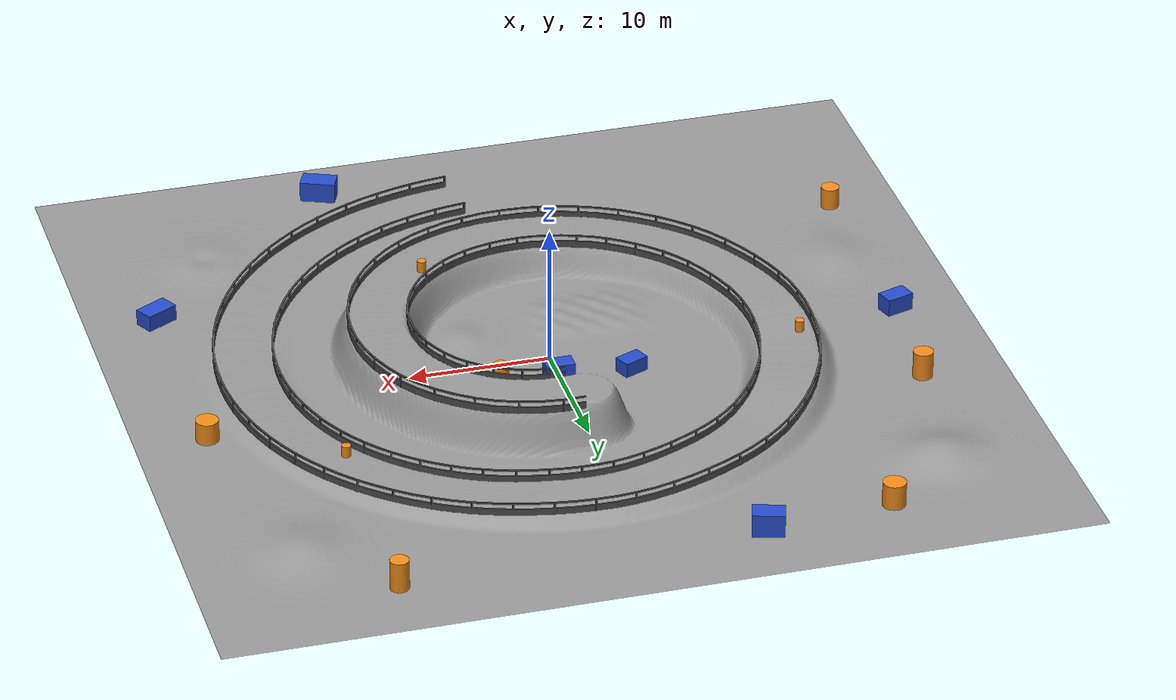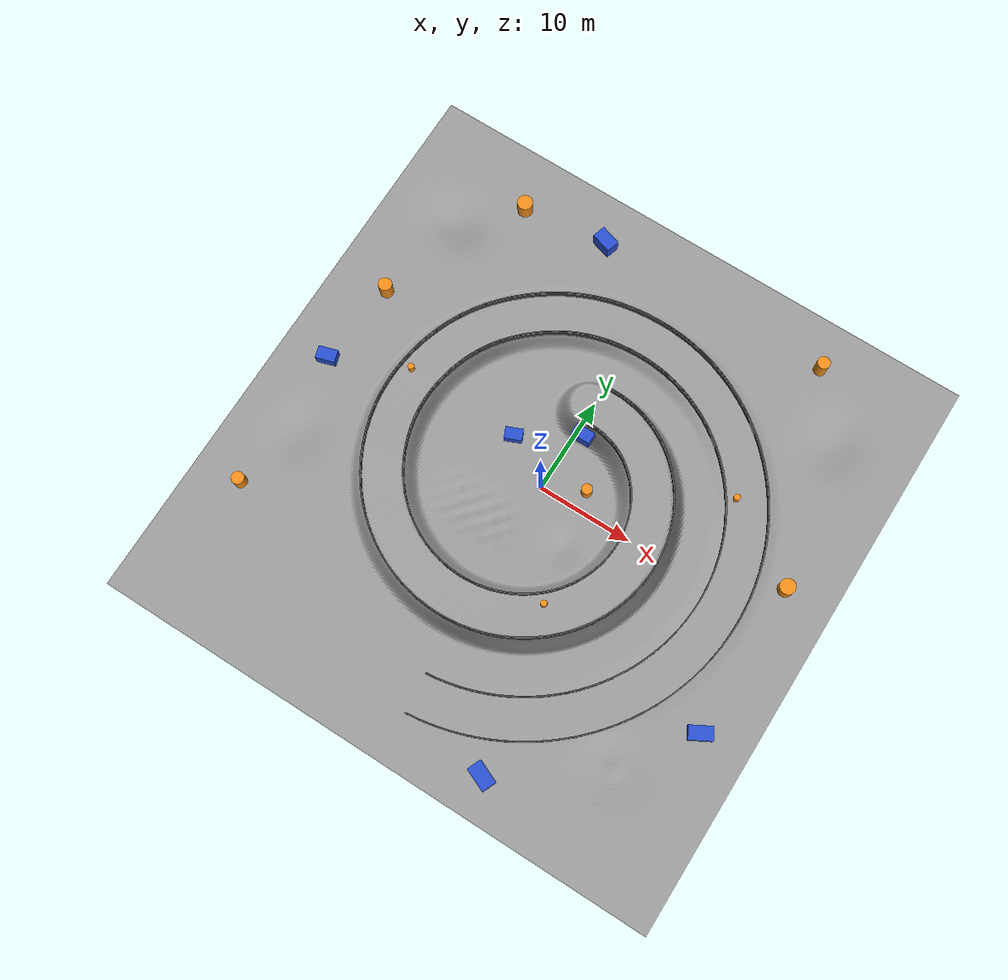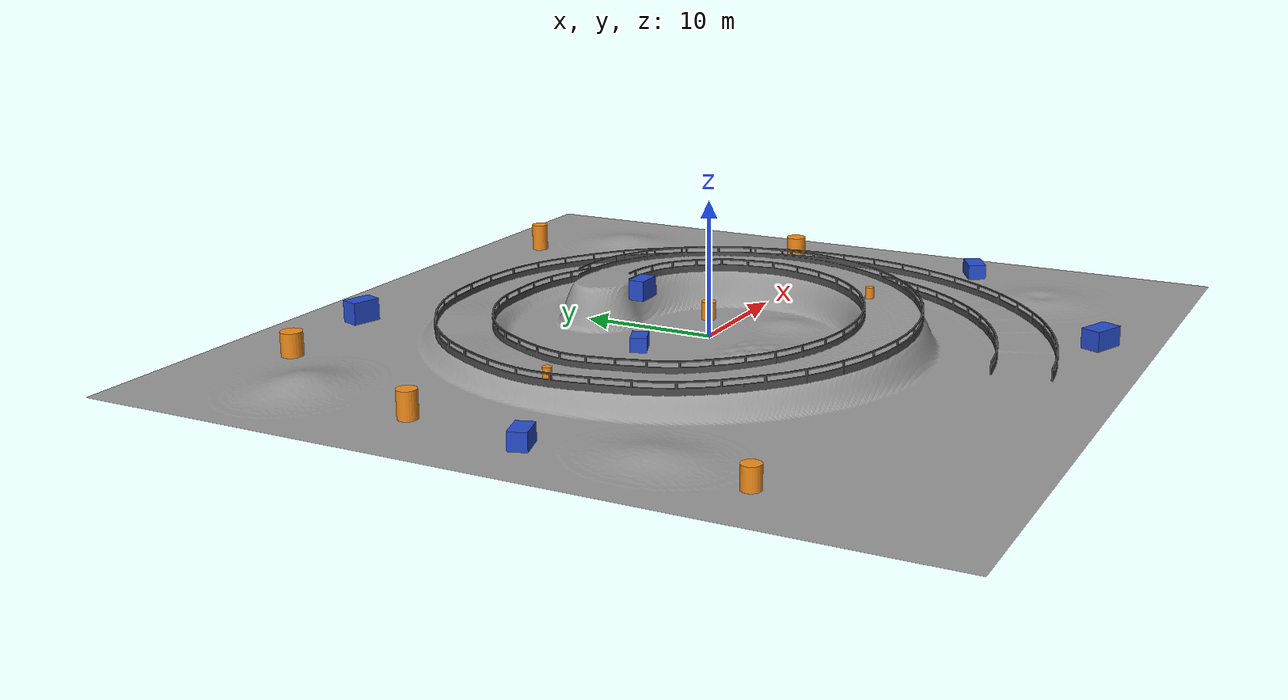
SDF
<?xml version="1.0"?>
<sdf version="1.7">
  <world name="rough_terrain">
    <gravity>0 0 -9.81</gravity>
    <physics name="ode" type="ode">
      <max_step_size>0.001</max_step_size><real_time_update_rate>1000</real_time_update_rate>
    </physics>
    <scene><shadows>true</shadows><ambient>0.4 0.4 0.4 1</ambient><background>0.7 0.7 0.7 1</background></scene>
    <light name="sun" type="directional">
      <pose>0 0 10 0 0 0</pose><diffuse>0.8 0.8 0.8 1</diffuse>
      <specular>0.05 0.05 0.05 1</specular><direction>-0.5 0.1 -0.9</direction>
      <cast_shadows>true</cast_shadows>
    </light>
    <model name="rough_terrain">
      <static>true</static><link name="terrain">
        <collision name="collision"><geometry><mesh><uri>file://worlds/rough_terrain_mesh.stl</uri></mesh></geometry>
          <surface><friction><ode><mu>1.0</mu><mu2>1.0</mu2></ode></friction></surface>
        </collision>
        <visual name="visual"><cast_shadows>false</cast_shadows><geometry><mesh><uri>file://worlds/rough_terrain_mesh.stl</uri></mesh></geometry>
          <material><lighting>true</lighting><script>
            <uri>file://media/materials/scripts/gazebo.material</uri>
            <name>Gazebo/Grey</name></script></material>
        </visual>
      </link>
    </model>
    <model name="cylinder_00">
      <static>true</static><pose>-25 -15 0.77 0 0 0</pose>
      <link name="body">
        <collision name="collision"><geometry><cylinder><radius>0.65</radius><length>1.6</length></cylinder></geometry></collision>
        <visual name="visual"><cast_shadows>true</cast_shadows><geometry><cylinder><radius>0.65</radius><length>1.6</length></cylinder></geometry>
          <material><lighting>true</lighting><script>
            <uri>file://media/materials/scripts/gazebo.material</uri>
            <name>Gazebo/Orange</name></script></material>
        </visual>
      </link>
    </model><model name="cylinder_01">
      <static>true</static><pose>-24 9 0.97 0 0 0</pose>
      <link name="body">
        <collision name="collision"><geometry><cylinder><radius>0.7</radius><length>2.0</length></cylinder></geometry></collision>
        <visual name="visual"><cast_shadows>true</cast_shadows><geometry><cylinder><radius>0.7</radius><length>2.0</length></cylinder></geometry>
          <material><lighting>true</lighting><script>
            <uri>file://media/materials/scripts/gazebo.material</uri>
            <name>Gazebo/Orange</name></script></material>
        </visual>
      </link>
    </model><model name="cylinder_02">
      <static>true</static><pose>-17 24 0.87 0 0 0</pose>
      <link name="body">
        <collision name="collision"><geometry><cylinder><radius>0.8</radius><length>1.8</length></cylinder></geometry></collision>
        <visual name="visual"><cast_shadows>true</cast_shadows><geometry><cylinder><radius>0.8</radius><length>1.8</length></cylinder></geometry>
          <material><lighting>true</lighting><script>
            <uri>file://media/materials/scripts/gazebo.material</uri>
            <name>Gazebo/Orange</name></script></material>
        </visual>
      </link>
    </model><model name="cylinder_03">
      <static>true</static><pose>17 25 1.07 0 0 0</pose>
      <link name="body">
        <collision name="collision"><geometry><cylinder><radius>0.65</radius><length>2.2</length></cylinder></geometry></collision>
        <visual name="visual"><cast_shadows>true</cast_shadows><geometry><cylinder><radius>0.65</radius><length>2.2</length></cylinder></geometry>
          <material><lighting>true</lighting><script>
            <uri>file://media/materials/scripts/gazebo.material</uri>
            <name>Gazebo/Orange</name></script></material>
        </visual>
      </link>
    </model><model name="cylinder_04">
      <static>true</static><pose>25 4 0.77 0 0 0</pose>
      <link name="body">
        <collision name="collision"><geometry><cylinder><radius>0.8</radius><length>1.6</length></cylinder></geometry></collision>
        <visual name="visual"><cast_shadows>true</cast_shadows><geometry><cylinder><radius>0.8</radius><length>1.6</length></cylinder></geometry>
          <material><lighting>true</lighting><script>
            <uri>file://media/materials/scripts/gazebo.material</uri>
            <name>Gazebo/Orange</name></script></material>
        </visual>
      </link>
    </model><model name="cylinder_05">
      <static>true</static><pose>4 2 0.6699999999999999 0 0 0</pose>
      <link name="body">
        <collision name="collision"><geometry><cylinder><radius>0.55</radius><length>1.4</length></cylinder></geometry></collision>
        <visual name="visual"><cast_shadows>true</cast_shadows><geometry><cylinder><radius>0.55</radius><length>1.4</length></cylinder></geometry>
          <material><lighting>true</lighting><script>
            <uri>file://media/materials/scripts/gazebo.material</uri>
            <name>Gazebo/Orange</name></script></material>
        </visual>
      </link>
    </model><model name="box_06">
      <static>true</static><pose>-25 0 0.62 0 0 0.3</pose>
      <link name="body">
        <collision name="collision"><geometry><box><size>2.0 1.3 1.3</size></box></geometry></collision>
        <visual name="visual"><cast_shadows>true</cast_shadows><geometry><box><size>2.0 1.3 1.3</size></box></geometry>
          <material><lighting>true</lighting><script>
            <uri>file://media/materials/scripts/gazebo.material</uri>
            <name>Gazebo/Blue</name></script></material>
        </visual>
      </link>
    </model><model name="box_07">
      <static>true</static><pose>-8 25 0.82 0 0 -0.3</pose>
      <link name="body">
        <collision name="collision"><geometry><box><size>2.2 1.4 1.7</size></box></geometry></collision>
        <visual name="visual"><cast_shadows>true</cast_shadows><geometry><box><size>2.2 1.4 1.7</size></box></geometry>
          <material><lighting>true</lighting><script>
            <uri>file://media/materials/scripts/gazebo.material</uri>
            <name>Gazebo/Blue</name></script></material>
        </visual>
      </link>
    </model><model name="box_08">
      <static>true</static><pose>25 -12 0.57 0 0 0.5</pose>
      <link name="body">
        <collision name="collision"><geometry><box><size>2.4 1.4 1.2</size></box></geometry></collision>
        <visual name="visual"><cast_shadows>true</cast_shadows><geometry><box><size>2.4 1.4 1.2</size></box></geometry>
          <material><lighting>true</lighting><script>
            <uri>file://media/materials/scripts/gazebo.material</uri>
            <name>Gazebo/Blue</name></script></material>
        </visual>
      </link>
    </model><model name="box_09">
      <static>true</static><pose>10 -26 0.72 0 0 -0.4</pose>
      <link name="body">
        <collision name="collision"><geometry><box><size>2.5 1.5 1.5</size></box></geometry></collision>
        <visual name="visual"><cast_shadows>true</cast_shadows><geometry><box><size>2.5 1.5 1.5</size></box></geometry>
          <material><lighting>true</lighting><script>
            <uri>file://media/materials/scripts/gazebo.material</uri>
            <name>Gazebo/Blue</name></script></material>
        </visual>
      </link>
    </model><model name="box_10">
      <static>true</static><pose>-5 3 0.52 0 0 0.4</pose>
      <link name="body">
        <collision name="collision"><geometry><box><size>1.8 1.2 1.1</size></box></geometry></collision>
        <visual name="visual"><cast_shadows>true</cast_shadows><geometry><box><size>1.8 1.2 1.1</size></box></geometry>
          <material><lighting>true</lighting><script>
            <uri>file://media/materials/scripts/gazebo.material</uri>
            <name>Gazebo/Blue</name></script></material>
        </visual>
      </link>
    </model><model name="box_11">
      <static>true</static><pose>1 6 2.665098039215686 0 0 0</pose>
      <link name="body">
        <collision name="collision"><geometry><box><size>2.0 1.2 1.5</size></box></geometry></collision>
        <visual name="visual"><cast_shadows>true</cast_shadows><geometry><box><size>2.0 1.2 1.5</size></box></geometry>
          <material><lighting>true</lighting><script>
            <uri>file://media/materials/scripts/gazebo.material</uri>
            <name>Gazebo/Blue</name></script></material>
        </visual>
      </link>
    </model><model name="cylinder_12">
      <static>true</static><pose>16.617973795372894 9.05094784869533 0.7714705882352941 0 0 0</pose>
      <link name="body">
        <collision name="collision"><geometry><cylinder><radius>0.32</radius><length>0.85</length></cylinder></geometry></collision>
        <visual name="visual"><cast_shadows>true</cast_shadows><geometry><cylinder><radius>0.32</radius><length>0.85</length></cylinder></geometry>
          <material><lighting>true</lighting><script>
            <uri>file://media/materials/scripts/gazebo.material</uri>
            <name>Gazebo/Orange</name></script></material>
        </visual>
      </link>
    </model><model name="cylinder_13">
      <static>true</static><pose>-16.986886672899455 3.1479175709570804 1.775392156862745 0 0 0</pose>
      <link name="body">
        <collision name="collision"><geometry><cylinder><radius>0.32</radius><length>0.85</length></cylinder></geometry></collision>
        <visual name="visual"><cast_shadows>true</cast_shadows><geometry><cylinder><radius>0.32</radius><length>0.85</length></cylinder></geometry>
          <material><lighting>true</lighting><script>
            <uri>file://media/materials/scripts/gazebo.material</uri>
            <name>Gazebo/Orange</name></script></material>
        </visual>
      </link>
    </model><model name="cylinder_14">
      <static>true</static><pose>6.5296108419936845 -9.813435060518238 2.857745098039216 0 0 0</pose>
      <link name="body">
        <collision name="collision"><geometry><cylinder><radius>0.32</radius><length>0.85</length></cylinder></geometry></collision>
        <visual name="visual"><cast_shadows>true</cast_shadows><geometry><cylinder><radius>0.32</radius><length>0.85</length></cylinder></geometry>
          <material><lighting>true</lighting><script>
            <uri>file://media/materials/scripts/gazebo.material</uri>
            <name>Gazebo/Orange</name></script></material>
        </visual>
      </link>
    </model>
    <model name="spiral_fence"><static>true</static><link name="fence">
      <collision name="collision"><geometry><mesh>
        <uri>file://worlds/rough_terrain_fence.stl</uri>
      </mesh></geometry></collision>
      <visual name="visual"><cast_shadows>false</cast_shadows><geometry><mesh>
        <uri>file://worlds/rough_terrain_fence.stl</uri>
      </mesh></geometry><material><lighting>true</lighting><script>
        <uri>file://media/materials/scripts/gazebo.material</uri><name>Gazebo/DarkGrey</name>
      </script></material></visual>
    </link></model>
    <gui><camera name="overview"><pose>-44 -48 50 0 0.65 0.83</pose></camera></gui>
  </world>
</sdf>
